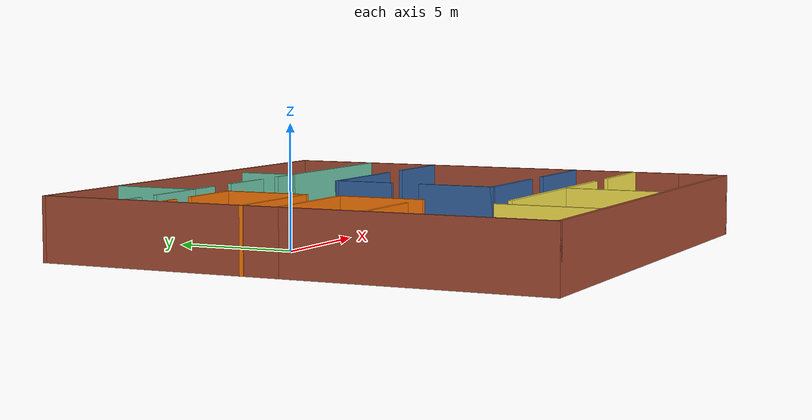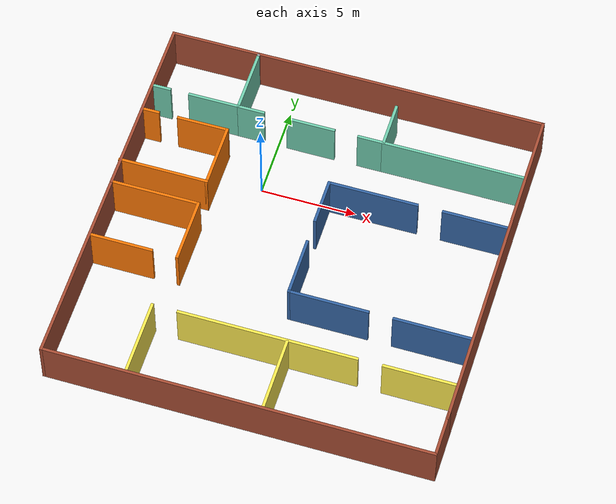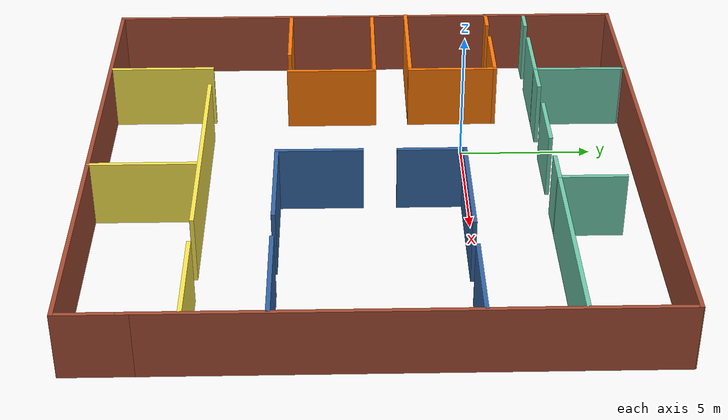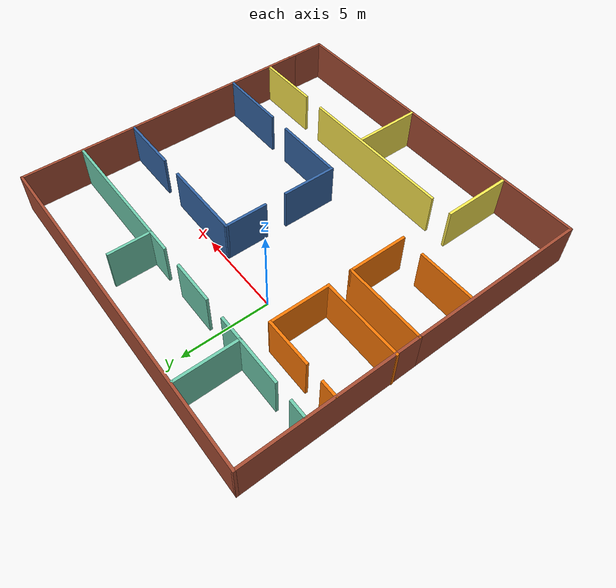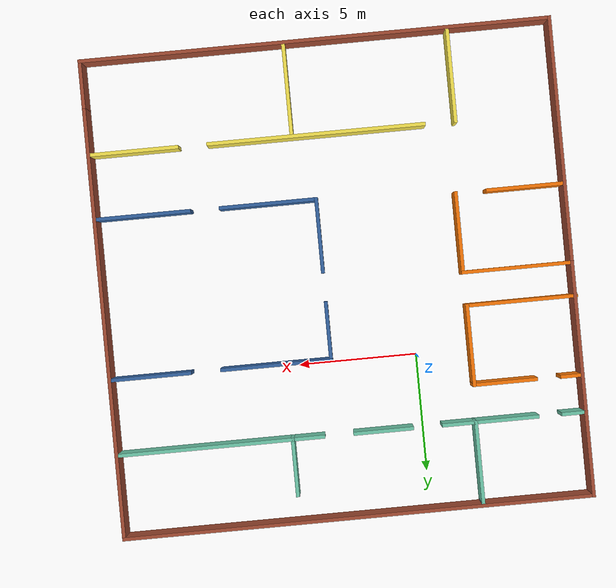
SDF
<?xml version='1.0'?>
<sdf version='1.6'>
  <model name='Building'>
    <pose frame=''>3.06448 -3.55841 0 0 -0 0</pose>
    <link name='Wall_20'>
      <collision name='Wall_20_Collision'>
        <geometry>
          <box>
            <size>10 0.15 2.5</size>
          </box>
        </geometry>
        <pose frame=''>0 0 1.25 0 -0 0</pose>
      </collision>
      <visual name='Wall_20_Visual'>
        <pose frame=''>0 0 1.25 0 -0 0</pose>
        <geometry>
          <box>
            <size>10 0.15 2.5</size>
          </box>
        </geometry>
        <material>
          <script>
            <uri>file://media/materials/scripts/gazebo.material</uri>
            <name>Gazebo/Bricks</name>
          </script>
          <ambient>1 1 1 1</ambient>
        </material>
        <meta>
          <layer>0</layer>
        </meta>
      </visual>
      <pose frame=''>-9.90862 5.175 0 0 -0 -1.5708</pose>
    </link>
    <link name='Wall_22'>
      <collision name='Wall_22_Collision'>
        <geometry>
          <box>
            <size>10.5 0.15 2.5</size>
          </box>
        </geometry>
        <pose frame=''>0 0 1.25 0 -0 0</pose>
      </collision>
      <visual name='Wall_22_Visual'>
        <pose frame=''>0 0 1.25 0 -0 0</pose>
        <geometry>
          <box>
            <size>10.5 0.15 2.5</size>
          </box>
        </geometry>
        <material>
          <script>
            <uri>file://media/materials/scripts/gazebo.material</uri>
            <name>Gazebo/Bricks</name>
          </script>
          <ambient>1 1 1 1</ambient>
        </material>
        <meta>
          <layer>0</layer>
        </meta>
      </visual>
      <pose frame=''>-9.90862 -4.925 0 0 -0 -1.5708</pose>
    </link>
    <link name='Wall_24'>
      <collision name='Wall_24_Collision'>
        <geometry>
          <box>
            <size>20 0.15 2.5</size>
          </box>
        </geometry>
        <pose frame=''>0 0 1.25 0 -0 0</pose>
      </collision>
      <visual name='Wall_24_Visual'>
        <pose frame=''>0 0 1.25 0 -0 0</pose>
        <geometry>
          <box>
            <size>20 0.15 2.5</size>
          </box>
        </geometry>
        <material>
          <script>
            <uri>file://media/materials/scripts/gazebo.material</uri>
            <name>Gazebo/Bricks</name>
          </script>
          <ambient>1 1 1 1</ambient>
        </material>
        <meta>
          <layer>0</layer>
        </meta>
      </visual>
      <pose frame=''>0.016381 10.1 0 0 -0 0</pose>
    </link>
    <link name='Wall_26'>
      <collision name='Wall_26_Collision'>
        <geometry>
          <box>
            <size>18.25 0.15 2.5</size>
          </box>
        </geometry>
        <pose frame=''>0 0 1.25 0 -0 0</pose>
      </collision>
      <visual name='Wall_26_Visual'>
        <pose frame=''>0 0 1.25 0 -0 0</pose>
        <geometry>
          <box>
            <size>18.25 0.15 2.5</size>
          </box>
        </geometry>
        <material>
          <script>
            <uri>file://media/materials/scripts/gazebo.material</uri>
            <name>Gazebo/Bricks</name>
          </script>
          <ambient>1 1 1 1</ambient>
        </material>
        <meta>
          <layer>0</layer>
        </meta>
      </visual>
      <pose frame=''>9.94138 1.01522 0 0 -0 -1.5708</pose>
    </link>
    <link name='Wall_28'>
      <collision name='Wall_28_Collision'>
        <geometry>
          <box>
            <size>20 0.15 2.5</size>
          </box>
        </geometry>
        <pose frame=''>0 0 1.25 0 -0 0</pose>
      </collision>
      <visual name='Wall_28_Visual'>
        <pose frame=''>0 0 1.25 0 -0 0</pose>
        <geometry>
          <box>
            <size>20 0.15 2.5</size>
          </box>
        </geometry>
        <material>
          <script>
            <uri>file://media/materials/scripts/gazebo.material</uri>
            <name>Gazebo/Bricks</name>
          </script>
          <ambient>1 1 1 1</ambient>
        </material>
        <meta>
          <layer>0</layer>
        </meta>
      </visual>
      <pose frame=''>0.016381 -10.1 0 0 -0 0</pose>
    </link>
    <link name='Wall_29'>
      <collision name='Wall_29_Collision'>
        <geometry>
          <box>
            <size>2.5 0.15 2.5</size>
          </box>
        </geometry>
        <pose frame=''>0 0 1.25 0 -0 0</pose>
      </collision>
      <visual name='Wall_29_Visual'>
        <pose frame=''>0 0 1.25 0 -0 0</pose>
        <geometry>
          <box>
            <size>2.5 0.15 2.5</size>
          </box>
        </geometry>
        <material>
          <script>
            <uri>file://media/materials/scripts/gazebo.material</uri>
            <name>Gazebo/Bricks</name>
          </script>
          <ambient>1 1 1 1</ambient>
        </material>
        <meta>
          <layer>0</layer>
        </meta>
      </visual>
      <pose frame=''>9.94138 -8.925 0 0 -0 1.5708</pose>
    </link>
    <link name='Wall_33'>
      <collision name='Wall_33_Collision'>
        <geometry>
          <box>
            <size>1 0.15 2.5</size>
          </box>
        </geometry>
        <pose frame=''>0 0 1.25 0 -0 0</pose>
      </collision>
      <visual name='Wall_33_Visual'>
        <pose frame=''>0 0 1.25 0 -0 0</pose>
        <geometry>
          <box>
            <size>1 0.15 2.5</size>
          </box>
        </geometry>
        <material>
          <script>
            <uri>file://media/materials/scripts/gazebo.material</uri>
            <name>Gazebo/Grey</name>
          </script>
          <ambient>0.435294 0.796078 0.67451 1</ambient>
        </material>
        <meta>
          <layer>0</layer>
        </meta>
      </visual>
      <pose frame=''>-9.38218 6.58003 0 0 -0 0</pose>
    </link>
    <link name='Wall_37'>
      <collision name='Wall_37_Collision'>
        <geometry>
          <box>
            <size>2.75 0.15 2.5</size>
          </box>
        </geometry>
        <pose frame=''>0 0 1.25 0 -0 0</pose>
      </collision>
      <visual name='Wall_37_Visual'>
        <pose frame=''>0 0 1.25 0 -0 0</pose>
        <geometry>
          <box>
            <size>2.75 0.15 2.5</size>
          </box>
        </geometry>
        <material>
          <script>
            <uri>file://media/materials/scripts/gazebo.material</uri>
            <name>Gazebo/Grey</name>
          </script>
          <ambient>0.435294 0.796078 0.67451 1</ambient>
        </material>
        <meta>
          <layer>0</layer>
        </meta>
      </visual>
      <pose frame=''>-6.55733 6.58022 0 0 -0 0.000148</pose>
    </link>
    <link name='Wall_38'>
      <collision name='Wall_38_Collision'>
        <geometry>
          <box>
            <size>3.6 0.15 2.5</size>
          </box>
        </geometry>
        <pose frame=''>0 0 1.25 0 -0 0</pose>
      </collision>
      <visual name='Wall_38_Visual'>
        <pose frame=''>0 0 1.25 0 -0 0</pose>
        <geometry>
          <box>
            <size>3.6 0.15 2.5</size>
          </box>
        </geometry>
        <material>
          <script>
            <uri>file://media/materials/scripts/gazebo.material</uri>
            <name>Gazebo/Grey</name>
          </script>
          <ambient>0.435294 0.796078 0.67451 1</ambient>
        </material>
        <meta>
          <layer>0</layer>
        </meta>
      </visual>
      <pose frame=''>-5.25748 8.30541 0 0 -0 1.5708</pose>
    </link>
    <link name='Wall_39'>
      <collision name='Wall_39_Collision'>
        <geometry>
          <box>
            <size>0.15 0.15 2.5</size>
          </box>
        </geometry>
        <pose frame=''>0 0 1.25 0 -0 0</pose>
      </collision>
      <visual name='Wall_39_Visual'>
        <pose frame=''>0 0 1.25 0 -0 0</pose>
        <geometry>
          <box>
            <size>0.15 0.15 2.5</size>
          </box>
        </geometry>
        <material>
          <script>
            <uri>file://media/materials/scripts/gazebo.material</uri>
            <name>Gazebo/Grey</name>
          </script>
          <ambient>1 1 1 1</ambient>
        </material>
        <meta>
          <layer>0</layer>
        </meta>
      </visual>
      <pose frame=''>-5.25748 10.0304 0 0 -0 0</pose>
    </link>
    <link name='Wall_41'>
      <collision name='Wall_41_Collision'>
        <geometry>
          <box>
            <size>1 0.15 2.5</size>
          </box>
        </geometry>
        <pose frame=''>0 0 1.25 0 -0 0</pose>
      </collision>
      <visual name='Wall_41_Visual'>
        <pose frame=''>0 0 1.25 0 -0 0</pose>
        <geometry>
          <box>
            <size>1 0.15 2.5</size>
          </box>
        </geometry>
        <material>
          <script>
            <uri>file://media/materials/scripts/gazebo.material</uri>
            <name>Gazebo/Grey</name>
          </script>
          <ambient>0.996078 0.47451 0.0196078 1</ambient>
        </material>
        <meta>
          <layer>0</layer>
        </meta>
      </visual>
      <pose frame=''>-9.47948 5.00841 0 0 -0 0</pose>
    </link>
    <link name='Wall_53'>
      <collision name='Wall_53_Collision'>
        <geometry>
          <box>
            <size>2.75 0.15 2.5</size>
          </box>
        </geometry>
        <pose frame=''>0 0 1.25 0 -0 0</pose>
      </collision>
      <visual name='Wall_53_Visual'>
        <pose frame=''>0 0 1.25 0 -0 0</pose>
        <geometry>
          <box>
            <size>2.75 0.15 2.5</size>
          </box>
        </geometry>
        <material>
          <script>
            <uri>file://media/materials/scripts/gazebo.material</uri>
            <name>Gazebo/Grey</name>
          </script>
          <ambient>0.996078 0.47451 0.0196078 1</ambient>
        </material>
        <meta>
          <layer>0</layer>
        </meta>
      </visual>
      <pose frame=''>-6.64148 5.00841 0 0 -0 0</pose>
    </link>
    <link name='Wall_55'>
      <collision name='Wall_55_Collision'>
        <geometry>
          <box>
            <size>3.50046 0.15 2.5</size>
          </box>
        </geometry>
        <pose frame=''>0 0 1.25 0 -0 0</pose>
      </collision>
      <visual name='Wall_55_Visual'>
        <pose frame=''>0 0 1.25 0 -0 0</pose>
        <geometry>
          <box>
            <size>3.50046 0.15 2.5</size>
          </box>
        </geometry>
        <material>
          <script>
            <uri>file://media/materials/scripts/gazebo.material</uri>
            <name>Gazebo/Grey</name>
          </script>
          <ambient>0.996078 0.47451 0.0196078 1</ambient>
        </material>
        <meta>
          <layer>0</layer>
        </meta>
      </visual>
      <pose frame=''>-5.34144 3.33318 0 0 -0 -1.57077</pose>
    </link>
    <link name='Wall_56'>
      <collision name='Wall_56_Collision'>
        <geometry>
          <box>
            <size>4.75 0.15 2.5</size>
          </box>
        </geometry>
        <pose frame=''>0 0 1.25 0 -0 0</pose>
      </collision>
      <visual name='Wall_56_Visual'>
        <pose frame=''>0 0 1.25 0 -0 0</pose>
        <geometry>
          <box>
            <size>4.75 0.15 2.5</size>
          </box>
        </geometry>
        <material>
          <script>
            <uri>file://media/materials/scripts/gazebo.material</uri>
            <name>Gazebo/Grey</name>
          </script>
          <ambient>0.996078 0.47451 0.0196078 1</ambient>
        </material>
        <meta>
          <layer>0</layer>
        </meta>
      </visual>
      <pose frame=''>-7.6414 1.65796 0 0 -0 3.14159</pose>
    </link>
    <link name='Wall_58'>
      <collision name='Wall_58_Collision'>
        <geometry>
          <box>
            <size>1.5 0.15 2.5</size>
          </box>
        </geometry>
        <pose frame=''>0 0 1.25 0 -0 0</pose>
      </collision>
      <visual name='Wall_58_Visual'>
        <pose frame=''>0 0 1.25 0 -0 0</pose>
        <geometry>
          <box>
            <size>1.5 0.15 2.5</size>
          </box>
        </geometry>
        <material>
          <script>
            <uri>file://media/materials/scripts/gazebo.material</uri>
            <name>Gazebo/Grey</name>
          </script>
          <ambient>0.435294 0.796078 0.67451 1</ambient>
        </material>
        <meta>
          <layer>0</layer>
        </meta>
      </visual>
      <pose frame=''>-4.58248 6.58041 0 0 -0 0</pose>
    </link>
    <link name='Wall_60'>
      <collision name='Wall_60_Collision'>
        <geometry>
          <box>
            <size>2.5532 0.15 2.5</size>
          </box>
        </geometry>
        <pose frame=''>0 0 1.25 0 -0 0</pose>
      </collision>
      <visual name='Wall_60_Visual'>
        <pose frame=''>0 0 1.25 0 -0 0</pose>
        <geometry>
          <box>
            <size>2.5532 0.15 2.5</size>
          </box>
        </geometry>
        <material>
          <script>
            <uri>file://media/materials/scripts/gazebo.material</uri>
            <name>Gazebo/Grey</name>
          </script>
          <ambient>0.435294 0.796078 0.67451 1</ambient>
        </material>
        <meta>
          <layer>0</layer>
        </meta>
      </visual>
      <pose frame=''>-1.35588 6.58041 0 0 -0 0</pose>
    </link>
    <link name='Wall_62'>
      <collision name='Wall_62_Collision'>
        <geometry>
          <box>
            <size>1.4468 0.15 2.5</size>
          </box>
        </geometry>
        <pose frame=''>0 0 1.25 0 -0 0</pose>
      </collision>
      <visual name='Wall_62_Visual'>
        <pose frame=''>0 0 1.25 0 -0 0</pose>
        <geometry>
          <box>
            <size>1.4468 0.15 2.5</size>
          </box>
        </geometry>
        <material>
          <script>
            <uri>file://media/materials/scripts/gazebo.material</uri>
            <name>Gazebo/Grey</name>
          </script>
          <ambient>0.435294 0.796078 0.67451 1</ambient>
        </material>
        <meta>
          <layer>0</layer>
        </meta>
      </visual>
      <pose frame=''>1.84412 6.58041 0 0 -0 0</pose>
    </link>
    <link name='Wall_63'>
      <collision name='Wall_63_Collision'>
        <geometry>
          <box>
            <size>2.5 0.15 2.5</size>
          </box>
        </geometry>
        <pose frame=''>0 0 1.25 0 -0 0</pose>
      </collision>
      <visual name='Wall_63_Visual'>
        <pose frame=''>0 0 1.25 0 -0 0</pose>
        <geometry>
          <box>
            <size>2.5 0.15 2.5</size>
          </box>
        </geometry>
        <material>
          <script>
            <uri>file://media/materials/scripts/gazebo.material</uri>
            <name>Gazebo/Grey</name>
          </script>
          <ambient>0.435294 0.796078 0.67451 1</ambient>
        </material>
        <meta>
          <layer>0</layer>
        </meta>
      </visual>
      <pose frame=''>2.49252 7.75541 0 0 -0 1.5708</pose>
    </link>
    <link name='Wall_65'>
      <collision name='Wall_65_Collision'>
        <geometry>
          <box>
            <size>7.5 0.15 2.5</size>
          </box>
        </geometry>
        <pose frame=''>0 0 1.25 0 -0 0</pose>
      </collision>
      <visual name='Wall_65_Visual'>
        <pose frame=''>0 0 1.25 0 -0 0</pose>
        <geometry>
          <box>
            <size>7.5 0.15 2.5</size>
          </box>
        </geometry>
        <material>
          <script>
            <uri>file://media/materials/scripts/gazebo.material</uri>
            <name>Gazebo/Grey</name>
          </script>
          <ambient>0.435294 0.796078 0.67451 1</ambient>
        </material>
        <meta>
          <layer>0</layer>
        </meta>
      </visual>
      <pose frame=''>6.16752 6.58041 0 0 -0 0</pose>
    </link>
    <link name='Wall_67'>
      <collision name='Wall_67_Collision'>
        <geometry>
          <box>
            <size>4.75 0.15 2.5</size>
          </box>
        </geometry>
        <pose frame=''>0 0 1.25 0 -0 0</pose>
      </collision>
      <visual name='Wall_67_Visual'>
        <pose frame=''>0 0 1.25 0 -0 0</pose>
        <geometry>
          <box>
            <size>4.75 0.15 2.5</size>
          </box>
        </geometry>
        <material>
          <script>
            <uri>file://media/materials/scripts/gazebo.material</uri>
            <name>Gazebo/Grey</name>
          </script>
          <ambient>0.996078 0.47451 0.0196078 1</ambient>
        </material>
        <meta>
          <layer>0</layer>
        </meta>
      </visual>
      <pose frame=''>-7.60862 0.25 0 0 -0 0</pose>
    </link>
    <link name='Wall_68'>
      <collision name='Wall_68_Collision'>
        <geometry>
          <box>
            <size>3.5 0.15 2.5</size>
          </box>
        </geometry>
        <pose frame=''>0 0 1.25 0 -0 0</pose>
      </collision>
      <visual name='Wall_68_Visual'>
        <pose frame=''>0 0 1.25 0 -0 0</pose>
        <geometry>
          <box>
            <size>3.5 0.15 2.5</size>
          </box>
        </geometry>
        <material>
          <script>
            <uri>file://media/materials/scripts/gazebo.material</uri>
            <name>Gazebo/Grey</name>
          </script>
          <ambient>0.996078 0.47451 0.0196078 1</ambient>
        </material>
        <meta>
          <layer>0</layer>
        </meta>
      </visual>
      <pose frame=''>-5.30862 -1.425 0 0 -0 -1.5708</pose>
    </link>
    <link name='Wall_71'>
      <collision name='Wall_71_Collision'>
        <geometry>
          <box>
            <size>3.25 0.15 2.5</size>
          </box>
        </geometry>
        <pose frame=''>0 0 1.25 0 -0 0</pose>
      </collision>
      <visual name='Wall_71_Visual'>
        <pose frame=''>0 0 1.25 0 -0 0</pose>
        <geometry>
          <box>
            <size>3.25 0.15 2.5</size>
          </box>
        </geometry>
        <material>
          <script>
            <uri>file://media/materials/scripts/gazebo.material</uri>
            <name>Gazebo/Grey</name>
          </script>
          <ambient>0.996078 0.47451 0.0196078 1</ambient>
        </material>
        <meta>
          <layer>0</layer>
        </meta>
      </visual>
      <pose frame=''>-8.20862 -3.1 0 0 -0 3.14159</pose>
    </link>
    <link name='Wall_73'>
      <collision name='Wall_73_Collision'>
        <geometry>
          <box>
            <size>4 0.15 2.5</size>
          </box>
        </geometry>
        <pose frame=''>0 0 1.25 0 -0 0</pose>
      </collision>
      <visual name='Wall_73_Visual'>
        <pose frame=''>0 0 1.25 0 -0 0</pose>
        <geometry>
          <box>
            <size>4 0.15 2.5</size>
          </box>
        </geometry>
        <material>
          <script>
            <uri>file://media/materials/scripts/gazebo.material</uri>
            <name>Gazebo/Grey</name>
          </script>
          <ambient>0.988235 0.913725 0.309804 1</ambient>
        </material>
        <meta>
          <layer>0</layer>
        </meta>
      </visual>
      <pose frame=''>-5.58379 -8.05698 0 0 -0 1.5708</pose>
    </link>
    <link name='Wall_76'>
      <collision name='Wall_76_Collision'>
        <geometry>
          <box>
            <size>9.25 0.15 2.5</size>
          </box>
        </geometry>
        <pose frame=''>0 0 1.25 0 -0 0</pose>
      </collision>
      <visual name='Wall_76_Visual'>
        <pose frame=''>0 0 1.25 0 -0 0</pose>
        <geometry>
          <box>
            <size>9.25 0.15 2.5</size>
          </box>
        </geometry>
        <material>
          <script>
            <uri>file://media/materials/scripts/gazebo.material</uri>
            <name>Gazebo/Grey</name>
          </script>
          <ambient>0.988235 0.913725 0.309804 1</ambient>
        </material>
        <meta>
          <layer>0</layer>
        </meta>
      </visual>
      <pose frame=''>0.316206 -6.13198 0 0 -0 0</pose>
    </link>
    <link name='Wall_78'>
      <collision name='Wall_78_Collision'>
        <geometry>
          <box>
            <size>3.75 0.15 2.5</size>
          </box>
        </geometry>
        <pose frame=''>0 0 1.25 0 -0 0</pose>
      </collision>
      <visual name='Wall_78_Visual'>
        <pose frame=''>0 0 1.25 0 -0 0</pose>
        <geometry>
          <box>
            <size>3.75 0.15 2.5</size>
          </box>
        </geometry>
        <material>
          <script>
            <uri>file://media/materials/scripts/gazebo.material</uri>
            <name>Gazebo/Grey</name>
          </script>
          <ambient>0.988235 0.913725 0.309804 1</ambient>
        </material>
        <meta>
          <layer>0</layer>
        </meta>
      </visual>
      <pose frame=''>8.01621 -6.13198 0 0 -0 0</pose>
    </link>
    <link name='Wall_80'>
      <collision name='Wall_80_Collision'>
        <geometry>
          <box>
            <size>4 0.15 2.5</size>
          </box>
        </geometry>
        <pose frame=''>0 0 1.25 0 -0 0</pose>
      </collision>
      <visual name='Wall_80_Visual'>
        <pose frame=''>0 0 1.25 0 -0 0</pose>
        <geometry>
          <box>
            <size>4 0.15 2.5</size>
          </box>
        </geometry>
        <material>
          <script>
            <uri>file://media/materials/scripts/gazebo.material</uri>
            <name>Gazebo/Grey</name>
          </script>
          <ambient>0.988235 0.913725 0.309804 1</ambient>
        </material>
        <meta>
          <layer>0</layer>
        </meta>
      </visual>
      <pose frame=''>1.34753 -8.12889 0 0 -0 -1.5708</pose>
    </link>
    <link name='Wall_82'>
      <collision name='Wall_82_Collision'>
        <geometry>
          <box>
            <size>3.46522 0.15 2.5</size>
          </box>
        </geometry>
        <pose frame=''>0 0 1.25 0 -0 0</pose>
      </collision>
      <visual name='Wall_82_Visual'>
        <pose frame=''>0 0 1.25 0 -0 0</pose>
        <geometry>
          <box>
            <size>3.46522 0.15 2.5</size>
          </box>
        </geometry>
        <material>
          <script>
            <uri>file://media/materials/scripts/gazebo.material</uri>
            <name>Gazebo/Grey</name>
          </script>
          <ambient>0.203922 0.396078 0.643137 1</ambient>
        </material>
        <meta>
          <layer>0</layer>
        </meta>
      </visual>
      <pose frame=''>8.21166 3.39611 0 0 -0 3.14159</pose>
    </link>
    <link name='Wall_87'>
      <collision name='Wall_87_Collision'>
        <geometry>
          <box>
            <size>3.21023 0.15 2.5</size>
          </box>
        </geometry>
        <pose frame=''>0 0 1.25 0 -0 0</pose>
      </collision>
      <visual name='Wall_87_Visual'>
        <pose frame=''>0 0 1.25 0 -0 0</pose>
        <geometry>
          <box>
            <size>3.21023 0.15 2.5</size>
          </box>
        </geometry>
        <material>
          <script>
            <uri>file://media/materials/scripts/gazebo.material</uri>
            <name>Gazebo/Grey</name>
          </script>
          <ambient>0.203922 0.396078 0.643137 1</ambient>
        </material>
        <meta>
          <layer>0</layer>
        </meta>
      </visual>
      <pose frame=''>0.569265 -1.87377 0 0 -0 -1.5708</pose>
    </link>
    <link name='Wall_88'>
      <collision name='Wall_88_Collision'>
        <geometry>
          <box>
            <size>4.18044 0.15 2.5</size>
          </box>
        </geometry>
        <pose frame=''>0 0 1.25 0 -0 0</pose>
      </collision>
      <visual name='Wall_88_Visual'>
        <pose frame=''>0 0 1.25 0 -0 0</pose>
        <geometry>
          <box>
            <size>4.18044 0.15 2.5</size>
          </box>
        </geometry>
        <material>
          <script>
            <uri>file://media/materials/scripts/gazebo.material</uri>
            <name>Gazebo/Grey</name>
          </script>
          <ambient>0.203922 0.396078 0.643137 1</ambient>
        </material>
        <meta>
          <layer>0</layer>
        </meta>
      </visual>
      <pose frame=''>2.58448 -3.40388 0 0 -0 0</pose>
    </link>
    <link name='Wall_90'>
      <collision name='Wall_90_Collision'>
        <geometry>
          <box>
            <size>4.06956 0.15 2.5</size>
          </box>
        </geometry>
        <pose frame=''>0 0 1.25 0 -0 0</pose>
      </collision>
      <visual name='Wall_90_Visual'>
        <pose frame=''>0 0 1.25 0 -0 0</pose>
        <geometry>
          <box>
            <size>4.06956 0.15 2.5</size>
          </box>
        </geometry>
        <material>
          <script>
            <uri>file://media/materials/scripts/gazebo.material</uri>
            <name>Gazebo/Grey</name>
          </script>
          <ambient>0.203922 0.396078 0.643137 1</ambient>
        </material>
        <meta>
          <layer>0</layer>
        </meta>
      </visual>
      <pose frame=''>7.90948 -3.40388 0 0 -0 0</pose>
    </link>
    <link name='Wall_93'>
      <collision name='Wall_93_Collision'>
        <geometry>
          <box>
            <size>2.53977 0.15 2.5</size>
          </box>
        </geometry>
        <pose frame=''>0 0 1.25 0 -0 0</pose>
      </collision>
      <visual name='Wall_93_Visual'>
        <pose frame=''>0 0 1.25 0 -0 0</pose>
        <geometry>
          <box>
            <size>2.53977 0.15 2.5</size>
          </box>
        </geometry>
        <material>
          <script>
            <uri>file://media/materials/scripts/gazebo.material</uri>
            <name>Gazebo/Grey</name>
          </script>
          <ambient>0.203922 0.396078 0.643137 1</ambient>
        </material>
        <meta>
          <layer>0</layer>
        </meta>
      </visual>
      <pose frame=''>0.569265 2.20123 0 0 -0 1.5708</pose>
    </link>
    <link name='Wall_94'>
      <collision name='Wall_94_Collision'>
        <geometry>
          <box>
            <size>4.75 0.15 2.5</size>
          </box>
        </geometry>
        <pose frame=''>0 0 1.25 0 -0 0</pose>
      </collision>
      <visual name='Wall_94_Visual'>
        <pose frame=''>0 0 1.25 0 -0 0</pose>
        <geometry>
          <box>
            <size>4.75 0.15 2.5</size>
          </box>
        </geometry>
        <material>
          <script>
            <uri>file://media/materials/scripts/gazebo.material</uri>
            <name>Gazebo/Grey</name>
          </script>
          <ambient>0.203922 0.396078 0.643137 1</ambient>
        </material>
        <meta>
          <layer>0</layer>
        </meta>
      </visual>
      <pose frame=''>2.86926 3.39611 0 0 -0 0</pose>
    </link>
    <static>1</static>
  </model>
</sdf>
